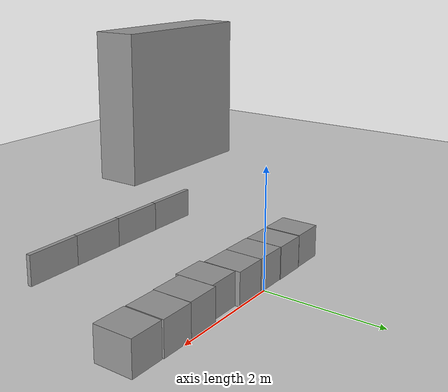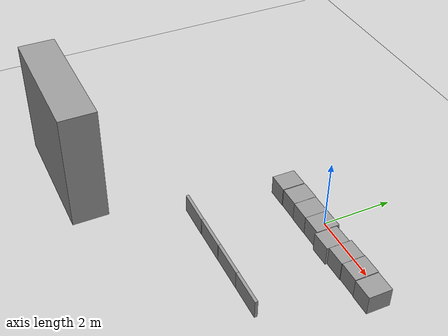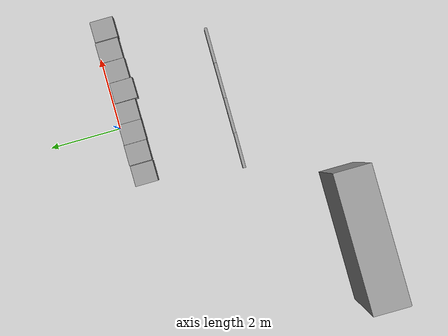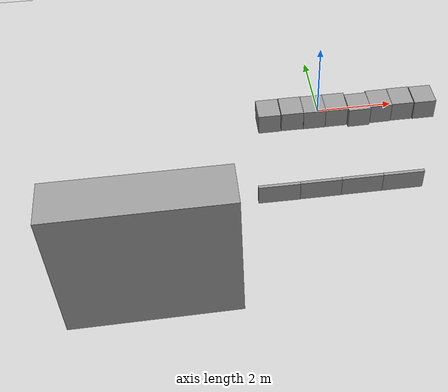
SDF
<sdf version="1.6">
 <world name="default">
  <model name="ground_plane">
   <static>1</static>
   <link name="link">
    <collision name="collision">
     <geometry><plane><normal>0 0 1</normal><size>100 100</size></plane></geometry>
     <surface>
      <contact><collide_bitmask>65535</collide_bitmask></contact>
      <friction><ode><mu>100</mu><mu2>50</mu2></ode></friction>
     </surface>
    </collision>
    <visual name="visual">
     <cast_shadows>0</cast_shadows>
     <geometry><plane><normal>0 0 1</normal><size>100 100</size></plane></geometry>
     <material>
      <script><uri>file://media/materials/scripts/gazebo.material</uri><name>Gazebo/Grey</name></script>
     </material>
    </visual>
   </link>
  </model>
  <model name="wall_4_1_3_clone_1">
   <link name="link">
    <inertial>
     <mass>12.3337</mass>
     <inertia><ixx>12.5329</ixx><ixy>0</ixy><ixz>0</ixz><iyy>25.4731</iyy><iyz>0</iyz><izz>14.9958</izz></inertia>
    </inertial>
    <pose>-2.9941 -0.388092 1.21174 0 -0 0</pose>
    <visual name="visual">
     <geometry><box><size>3.68647 1 3.34571</size></box></geometry>
     <material>
      <script><name>Gazebo/Grey</name><uri>file://media/materials/scripts/gazebo.material</uri></script>
     </material>
    </visual>
    <collision name="collision">
     <geometry><box><size>3.68647 1 3.34571</size></box></geometry>
     <surface>
      <friction>
       <ode><mu>1</mu><mu2>1</mu2><fdir1>0 0 0</fdir1><slip1>0</slip1><slip2>0</slip2></ode>
       <torsional>
        <coefficient>1</coefficient>
        <patch_radius>0</patch_radius>
        <surface_radius>0</surface_radius>
        <use_patch_radius>1</use_patch_radius>
        <ode><slip>0</slip></ode>
       </torsional>
      </friction>
      <bounce><restitution_coefficient>0</restitution_coefficient><threshold>1e+06</threshold></bounce>
      <contact>
       <collide_without_contact>0</collide_without_contact>
       <collide_without_contact_bitmask>1</collide_without_contact_bitmask>
       <collide_bitmask>1</collide_bitmask>
       <ode>
        <soft_cfm>0</soft_cfm>
        <soft_erp>0.2</soft_erp>
        <kp>1e+13</kp>
        <kd>1</kd>
        <max_vel>0.01</max_vel>
        <min_depth>0</min_depth>
       </ode>
       <bullet>
        <split_impulse>1</split_impulse>
        <split_impulse_penetration_threshold>-0.01</split_impulse_penetration_threshold>
        <soft_cfm>0</soft_cfm>
        <soft_erp>0.2</soft_erp>
        <kp>1e+13</kp>
        <kd>1</kd>
       </bullet>
      </contact>
     </surface>
    </collision>
   </link>
   <static>1</static>
   <allow_auto_disable>0</allow_auto_disable>
   <pose>-1.52472 -5.12582 0.5 0 -0 0</pose>
  </model>
  <model name="panel_14_clone_1_clone_clone_2">
   <link name="link">
    <inertial>
     <mass>0.0428479</mass>
     <inertia>
      <ixx>0.00456249</ixx>
      <ixy>0</ixy>
      <ixz>0</ixz>
      <iyy>0.00101543</iyy>
      <iyz>0</iyz>
      <izz>0.00359426</izz>
     </inertia>
    </inertial>
    <pose>-0.996065 -0.479892 0.260289 0 -0 0</pose>
    <visual name="visual">
     <geometry><box><size>0.081299 1 0.527041</size></box></geometry>
     <material>
      <script><name>Gazebo/Grey</name><uri>file://media/materials/scripts/gazebo.material</uri></script>
      <emissive>0 0 0 1</emissive>
      <shader type="vertex"><normal_map>__default__</normal_map></shader>
      <ambient>0.3 0.3 0.3 1</ambient>
      <diffuse>0.7 0.7 0.7 1</diffuse>
      <specular>0.01 0.01 0.01 1</specular>
     </material>
    </visual>
    <collision name="collision">
     <geometry><box><size>0.081299 1 0.527041</size></box></geometry>
     <surface>
      <friction>
       <ode><mu>1</mu><mu2>1</mu2><fdir1>0 0 0</fdir1><slip1>0</slip1><slip2>0</slip2></ode>
       <torsional>
        <coefficient>1</coefficient>
        <patch_radius>0</patch_radius>
        <surface_radius>0</surface_radius>
        <use_patch_radius>1</use_patch_radius>
        <ode><slip>0</slip></ode>
       </torsional>
      </friction>
      <bounce><restitution_coefficient>0</restitution_coefficient><threshold>1e+06</threshold></bounce>
      <contact>
       <collide_without_contact>0</collide_without_contact>
       <collide_without_contact_bitmask>1</collide_without_contact_bitmask>
       <collide_bitmask>1</collide_bitmask>
       <ode>
        <soft_cfm>0</soft_cfm>
        <soft_erp>0.2</soft_erp>
        <kp>1e+13</kp>
        <kd>1</kd>
        <max_vel>0.01</max_vel>
        <min_depth>0</min_depth>
       </ode>
       <bullet>
        <split_impulse>1</split_impulse>
        <split_impulse_penetration_threshold>-0.01</split_impulse_penetration_threshold>
        <soft_cfm>0</soft_cfm>
        <soft_erp>0.2</soft_erp>
        <kp>1e+13</kp>
        <kd>1</kd>
       </bullet>
      </contact>
     </surface>
    </collision>
   </link>
   <static>0</static>
   <allow_auto_disable>0</allow_auto_disable>
   <pose>1.98332 -4.04352 0.003231 1e-05 -0 -1.57459</pose>
  </model>
  <model name="panel_14_clone_1_clone_clone_3">
   <link name="link">
    <inertial>
     <mass>0.0428479</mass>
     <inertia>
      <ixx>0.00456249</ixx>
      <ixy>0</ixy>
      <ixz>0</ixz>
      <iyy>0.00101543</iyy>
      <iyz>0</iyz>
      <izz>0.00359426</izz>
     </inertia>
    </inertial>
    <pose>-0.996065 -0.479892 0.260289 0 -0 0</pose>
    <visual name="visual">
     <geometry><box><size>0.081299 1 0.527041</size></box></geometry>
     <material>
      <script><name>Gazebo/Grey</name><uri>file://media/materials/scripts/gazebo.material</uri></script>
      <emissive>0 0 0 1</emissive>
      <shader type="vertex"><normal_map>__default__</normal_map></shader>
      <ambient>0.3 0.3 0.3 1</ambient>
      <diffuse>0.7 0.7 0.7 1</diffuse>
      <specular>0.01 0.01 0.01 1</specular>
     </material>
    </visual>
    <collision name="collision">
     <geometry><box><size>0.081299 1 0.527041</size></box></geometry>
     <surface>
      <friction>
       <ode><mu>1</mu><mu2>1</mu2><fdir1>0 0 0</fdir1><slip1>0</slip1><slip2>0</slip2></ode>
       <torsional>
        <coefficient>1</coefficient>
        <patch_radius>0</patch_radius>
        <surface_radius>0</surface_radius>
        <use_patch_radius>1</use_patch_radius>
        <ode><slip>0</slip></ode>
       </torsional>
      </friction>
      <bounce><restitution_coefficient>0</restitution_coefficient><threshold>1e+06</threshold></bounce>
      <contact>
       <collide_without_contact>0</collide_without_contact>
       <collide_without_contact_bitmask>1</collide_without_contact_bitmask>
       <collide_bitmask>1</collide_bitmask>
       <ode>
        <soft_cfm>0</soft_cfm>
        <soft_erp>0.2</soft_erp>
        <kp>1e+13</kp>
        <kd>1</kd>
        <max_vel>0.01</max_vel>
        <min_depth>0</min_depth>
       </ode>
       <bullet>
        <split_impulse>1</split_impulse>
        <split_impulse_penetration_threshold>-0.01</split_impulse_penetration_threshold>
        <soft_cfm>0</soft_cfm>
        <soft_erp>0.2</soft_erp>
        <kp>1e+13</kp>
        <kd>1</kd>
       </bullet>
      </contact>
     </surface>
    </collision>
   </link>
   <static>0</static>
   <allow_auto_disable>0</allow_auto_disable>
   <pose>0.984938 -4.04067 0.003227 -4e-06 -0 -1.57273</pose>
  </model>
  <model name="panel_14_clone_1_clone_clone_4">
   <link name="link">
    <inertial>
     <mass>0.0428479</mass>
     <inertia>
      <ixx>0.00456249</ixx>
      <ixy>0</ixy>
      <ixz>0</ixz>
      <iyy>0.00101543</iyy>
      <iyz>0</iyz>
      <izz>0.00359426</izz>
     </inertia>
    </inertial>
    <pose>-0.996065 -0.479892 0.260289 0 -0 0</pose>
    <visual name="visual">
     <geometry><box><size>0.081299 1 0.527041</size></box></geometry>
     <material>
      <script><name>Gazebo/Grey</name><uri>file://media/materials/scripts/gazebo.material</uri></script>
      <emissive>0 0 0 1</emissive>
      <shader type="vertex"><normal_map>__default__</normal_map></shader>
      <ambient>0.3 0.3 0.3 1</ambient>
      <diffuse>0.7 0.7 0.7 1</diffuse>
      <specular>0.01 0.01 0.01 1</specular>
     </material>
    </visual>
    <collision name="collision">
     <geometry><box><size>0.081299 1 0.527041</size></box></geometry>
     <surface>
      <friction>
       <ode><mu>1</mu><mu2>1</mu2><fdir1>0 0 0</fdir1><slip1>0</slip1><slip2>0</slip2></ode>
       <torsional>
        <coefficient>1</coefficient>
        <patch_radius>0</patch_radius>
        <surface_radius>0</surface_radius>
        <use_patch_radius>1</use_patch_radius>
        <ode><slip>0</slip></ode>
       </torsional>
      </friction>
      <bounce><restitution_coefficient>0</restitution_coefficient><threshold>1e+06</threshold></bounce>
      <contact>
       <collide_without_contact>0</collide_without_contact>
       <collide_without_contact_bitmask>1</collide_without_contact_bitmask>
       <collide_bitmask>1</collide_bitmask>
       <ode>
        <soft_cfm>0</soft_cfm>
        <soft_erp>0.2</soft_erp>
        <kp>1e+13</kp>
        <kd>1</kd>
        <max_vel>0.01</max_vel>
        <min_depth>0</min_depth>
       </ode>
       <bullet>
        <split_impulse>1</split_impulse>
        <split_impulse_penetration_threshold>-0.01</split_impulse_penetration_threshold>
        <soft_cfm>0</soft_cfm>
        <soft_erp>0.2</soft_erp>
        <kp>1e+13</kp>
        <kd>1</kd>
       </bullet>
      </contact>
     </surface>
    </collision>
   </link>
   <static>0</static>
   <allow_auto_disable>0</allow_auto_disable>
   <pose>-0.017438 -4.04151 0.003231 1e-05 0 -1.57455</pose>
  </model>
  <model name="panel_14_clone_1_clone_clone_5">
   <link name="link">
    <inertial>
     <mass>0.0428479</mass>
     <inertia>
      <ixx>0.00456249</ixx>
      <ixy>0</ixy>
      <ixz>0</ixz>
      <iyy>0.00101543</iyy>
      <iyz>0</iyz>
      <izz>0.00359426</izz>
     </inertia>
    </inertial>
    <pose>-0.996065 -0.479892 0.260289 0 -0 0</pose>
    <visual name="visual">
     <geometry><box><size>0.081299 1 0.527041</size></box></geometry>
     <material>
      <script><name>Gazebo/Grey</name><uri>file://media/materials/scripts/gazebo.material</uri></script>
      <emissive>0 0 0 1</emissive>
      <shader type="vertex"><normal_map>__default__</normal_map></shader>
      <ambient>0.3 0.3 0.3 1</ambient>
      <diffuse>0.7 0.7 0.7 1</diffuse>
      <specular>0.01 0.01 0.01 1</specular>
     </material>
    </visual>
    <collision name="collision">
     <geometry><box><size>0.081299 1 0.527041</size></box></geometry>
     <surface>
      <friction>
       <ode><mu>1</mu><mu2>1</mu2><fdir1>0 0 0</fdir1><slip1>0</slip1><slip2>0</slip2></ode>
       <torsional>
        <coefficient>1</coefficient>
        <patch_radius>0</patch_radius>
        <surface_radius>0</surface_radius>
        <use_patch_radius>1</use_patch_radius>
        <ode><slip>0</slip></ode>
       </torsional>
      </friction>
      <bounce><restitution_coefficient>0</restitution_coefficient><threshold>1e+06</threshold></bounce>
      <contact>
       <collide_without_contact>0</collide_without_contact>
       <collide_without_contact_bitmask>1</collide_without_contact_bitmask>
       <collide_bitmask>1</collide_bitmask>
       <ode>
        <soft_cfm>0</soft_cfm>
        <soft_erp>0.2</soft_erp>
        <kp>1e+13</kp>
        <kd>1</kd>
        <max_vel>0.01</max_vel>
        <min_depth>0</min_depth>
       </ode>
       <bullet>
        <split_impulse>1</split_impulse>
        <split_impulse_penetration_threshold>-0.01</split_impulse_penetration_threshold>
        <soft_cfm>0</soft_cfm>
        <soft_erp>0.2</soft_erp>
        <kp>1e+13</kp>
        <kd>1</kd>
       </bullet>
      </contact>
     </surface>
    </collision>
   </link>
   <static>0</static>
   <allow_auto_disable>0</allow_auto_disable>
   <pose>-1.02336 -4.04311 0.003232 0 -1e-06 -1.57976</pose>
  </model>
  <model name="box_level5_clone_3">
   <link name="link">
    <inertial>
     <mass>0.207385</mass>
     <inertia>
      <ixx>0.0125184</ixx>
      <ixy>0</ixy>
      <ixz>0</ixz>
      <iyy>0.0111102</iyy>
      <iyz>0</iyz>
      <izz>0.0130087</izz>
     </inertia>
    </inertial>
    <visual name="visual">
     <geometry><box><size>0.579331 0.645836 0.554302</size></box></geometry>
     <material>
      <script><name>Gazebo/Grey</name><uri>file://media/materials/scripts/gazebo.material</uri></script>
     </material>
    </visual>
    <collision name="collision">
     <geometry><box><size>0.579331 0.645836 0.554302</size></box></geometry>
     <surface>
      <friction>
       <ode><mu>1</mu><mu2>1</mu2><fdir1>0 0 0</fdir1><slip1>0</slip1><slip2>0</slip2></ode>
       <torsional>
        <coefficient>1</coefficient>
        <patch_radius>0</patch_radius>
        <surface_radius>0</surface_radius>
        <use_patch_radius>1</use_patch_radius>
        <ode><slip>0</slip></ode>
       </torsional>
      </friction>
      <bounce><restitution_coefficient>0</restitution_coefficient><threshold>1e+06</threshold></bounce>
      <contact>
       <collide_without_contact>0</collide_without_contact>
       <collide_without_contact_bitmask>1</collide_without_contact_bitmask>
       <collide_bitmask>1</collide_bitmask>
       <ode>
        <soft_cfm>0</soft_cfm>
        <soft_erp>0.2</soft_erp>
        <kp>1e+13</kp>
        <kd>1</kd>
        <max_vel>0.01</max_vel>
        <min_depth>0</min_depth>
       </ode>
       <bullet>
        <split_impulse>1</split_impulse>
        <split_impulse_penetration_threshold>-0.01</split_impulse_penetration_threshold>
        <soft_cfm>0</soft_cfm>
        <soft_erp>0.2</soft_erp>
        <kp>1e+13</kp>
        <kd>1</kd>
       </bullet>
      </contact>
     </surface>
    </collision>
   </link>
   <static>0</static>
   <pose>2.71819 -0.342422 0.277144 -6e-06 4e-06 0</pose>
  </model>
  <model name="box_level5_clone_9">
   <link name="link">
    <inertial>
     <mass>0.207385</mass>
     <inertia>
      <ixx>0.0125184</ixx>
      <ixy>0</ixy>
      <ixz>0</ixz>
      <iyy>0.0111102</iyy>
      <iyz>0</iyz>
      <izz>0.0130087</izz>
     </inertia>
    </inertial>
    <visual name="visual">
     <geometry><box><size>0.579331 0.645836 0.554302</size></box></geometry>
     <material>
      <script><name>Gazebo/Grey</name><uri>file://media/materials/scripts/gazebo.material</uri></script>
     </material>
    </visual>
    <collision name="collision">
     <geometry><box><size>0.579331 0.645836 0.554302</size></box></geometry>
     <surface>
      <friction>
       <ode><mu>1</mu><mu2>1</mu2><fdir1>0 0 0</fdir1><slip1>0</slip1><slip2>0</slip2></ode>
       <torsional>
        <coefficient>1</coefficient>
        <patch_radius>0</patch_radius>
        <surface_radius>0</surface_radius>
        <use_patch_radius>1</use_patch_radius>
        <ode><slip>0</slip></ode>
       </torsional>
      </friction>
      <bounce><restitution_coefficient>0</restitution_coefficient><threshold>1e+06</threshold></bounce>
      <contact>
       <collide_without_contact>0</collide_without_contact>
       <collide_without_contact_bitmask>1</collide_without_contact_bitmask>
       <collide_bitmask>1</collide_bitmask>
       <ode>
        <soft_cfm>0</soft_cfm>
        <soft_erp>0.2</soft_erp>
        <kp>1e+13</kp>
        <kd>1</kd>
        <max_vel>0.01</max_vel>
        <min_depth>0</min_depth>
       </ode>
       <bullet>
        <split_impulse>1</split_impulse>
        <split_impulse_penetration_threshold>-0.01</split_impulse_penetration_threshold>
        <soft_cfm>0</soft_cfm>
        <soft_erp>0.2</soft_erp>
        <kp>1e+13</kp>
        <kd>1</kd>
       </bullet>
      </contact>
     </surface>
    </collision>
   </link>
   <static>0</static>
   <pose>2.12079 -0.330202 0.277144 -6e-06 4e-06 0</pose>
  </model>
  <model name="box_level5_clone_10">
   <link name="link">
    <inertial>
     <mass>0.207385</mass>
     <inertia>
      <ixx>0.0125184</ixx>
      <ixy>0</ixy>
      <ixz>0</ixz>
      <iyy>0.0111102</iyy>
      <iyz>0</iyz>
      <izz>0.0130087</izz>
     </inertia>
    </inertial>
    <visual name="visual">
     <geometry><box><size>0.579331 0.645836 0.554302</size></box></geometry>
     <material>
      <script><name>Gazebo/Grey</name><uri>file://media/materials/scripts/gazebo.material</uri></script>
     </material>
    </visual>
    <collision name="collision">
     <geometry><box><size>0.579331 0.645836 0.554302</size></box></geometry>
     <surface>
      <friction>
       <ode><mu>1</mu><mu2>1</mu2><fdir1>0 0 0</fdir1><slip1>0</slip1><slip2>0</slip2></ode>
       <torsional>
        <coefficient>1</coefficient>
        <patch_radius>0</patch_radius>
        <surface_radius>0</surface_radius>
        <use_patch_radius>1</use_patch_radius>
        <ode><slip>0</slip></ode>
       </torsional>
      </friction>
      <bounce><restitution_coefficient>0</restitution_coefficient><threshold>1e+06</threshold></bounce>
      <contact>
       <collide_without_contact>0</collide_without_contact>
       <collide_without_contact_bitmask>1</collide_without_contact_bitmask>
       <collide_bitmask>1</collide_bitmask>
       <ode>
        <soft_cfm>0</soft_cfm>
        <soft_erp>0.2</soft_erp>
        <kp>1e+13</kp>
        <kd>1</kd>
        <max_vel>0.01</max_vel>
        <min_depth>0</min_depth>
       </ode>
       <bullet>
        <split_impulse>1</split_impulse>
        <split_impulse_penetration_threshold>-0.01</split_impulse_penetration_threshold>
        <soft_cfm>0</soft_cfm>
        <soft_erp>0.2</soft_erp>
        <kp>1e+13</kp>
        <kd>1</kd>
       </bullet>
      </contact>
     </surface>
    </collision>
   </link>
   <static>0</static>
   <pose>-1.38907 -0.336287 0.277144 -6e-06 4e-06 0</pose>
  </model>
  <model name="box_level5_clone_11">
   <link name="link">
    <inertial>
     <mass>0.207385</mass>
     <inertia>
      <ixx>0.0125184</ixx>
      <ixy>0</ixy>
      <ixz>0</ixz>
      <iyy>0.0111102</iyy>
      <iyz>0</iyz>
      <izz>0.0130087</izz>
     </inertia>
    </inertial>
    <visual name="visual">
     <geometry><box><size>0.579331 0.645836 0.554302</size></box></geometry>
     <material>
      <script><name>Gazebo/Grey</name><uri>file://media/materials/scripts/gazebo.material</uri></script>
     </material>
    </visual>
    <collision name="collision">
     <geometry><box><size>0.579331 0.645836 0.554302</size></box></geometry>
     <surface>
      <friction>
       <ode><mu>1</mu><mu2>1</mu2><fdir1>0 0 0</fdir1><slip1>0</slip1><slip2>0</slip2></ode>
       <torsional>
        <coefficient>1</coefficient>
        <patch_radius>0</patch_radius>
        <surface_radius>0</surface_radius>
        <use_patch_radius>1</use_patch_radius>
        <ode><slip>0</slip></ode>
       </torsional>
      </friction>
      <bounce><restitution_coefficient>0</restitution_coefficient><threshold>1e+06</threshold></bounce>
      <contact>
       <collide_without_contact>0</collide_without_contact>
       <collide_without_contact_bitmask>1</collide_without_contact_bitmask>
       <collide_bitmask>1</collide_bitmask>
       <ode>
        <soft_cfm>0</soft_cfm>
        <soft_erp>0.2</soft_erp>
        <kp>1e+13</kp>
        <kd>1</kd>
        <max_vel>0.01</max_vel>
        <min_depth>0</min_depth>
       </ode>
       <bullet>
        <split_impulse>1</split_impulse>
        <split_impulse_penetration_threshold>-0.01</split_impulse_penetration_threshold>
        <soft_cfm>0</soft_cfm>
        <soft_erp>0.2</soft_erp>
        <kp>1e+13</kp>
        <kd>1</kd>
       </bullet>
      </contact>
     </surface>
    </collision>
   </link>
   <static>0</static>
   <pose>-0.792316 -0.328829 0.277144 -6e-06 4e-06 0</pose>
  </model>
  <model name="box_level5_clone_12">
   <link name="link">
    <inertial>
     <mass>0.207385</mass>
     <inertia>
      <ixx>0.0125184</ixx>
      <ixy>0</ixy>
      <ixz>0</ixz>
      <iyy>0.0111102</iyy>
      <iyz>0</iyz>
      <izz>0.0130087</izz>
     </inertia>
    </inertial>
    <visual name="visual">
     <geometry><box><size>0.579331 0.645836 0.554302</size></box></geometry>
     <material>
      <script><name>Gazebo/Grey</name><uri>file://media/materials/scripts/gazebo.material</uri></script>
     </material>
    </visual>
    <collision name="collision">
     <geometry><box><size>0.579331 0.645836 0.554302</size></box></geometry>
     <surface>
      <friction>
       <ode><mu>1</mu><mu2>1</mu2><fdir1>0 0 0</fdir1><slip1>0</slip1><slip2>0</slip2></ode>
       <torsional>
        <coefficient>1</coefficient>
        <patch_radius>0</patch_radius>
        <surface_radius>0</surface_radius>
        <use_patch_radius>1</use_patch_radius>
        <ode><slip>0</slip></ode>
       </torsional>
      </friction>
      <bounce><restitution_coefficient>0</restitution_coefficient><threshold>1e+06</threshold></bounce>
      <contact>
       <collide_without_contact>0</collide_without_contact>
       <collide_without_contact_bitmask>1</collide_without_contact_bitmask>
       <collide_bitmask>1</collide_bitmask>
       <ode>
        <soft_cfm>0</soft_cfm>
        <soft_erp>0.2</soft_erp>
        <kp>1e+13</kp>
        <kd>1</kd>
        <max_vel>0.01</max_vel>
        <min_depth>0</min_depth>
       </ode>
       <bullet>
        <split_impulse>1</split_impulse>
        <split_impulse_penetration_threshold>-0.01</split_impulse_penetration_threshold>
        <soft_cfm>0</soft_cfm>
        <soft_erp>0.2</soft_erp>
        <kp>1e+13</kp>
        <kd>1</kd>
       </bullet>
      </contact>
     </surface>
    </collision>
   </link>
   <static>0</static>
   <pose>-0.210851 -0.336688 0.277151 -0 -0 -0</pose>
  </model>
  <model name="box_level5_clone_13">
   <link name="link">
    <inertial>
     <mass>0.207385</mass>
     <inertia>
      <ixx>0.0125184</ixx>
      <ixy>0</ixy>
      <ixz>0</ixz>
      <iyy>0.0111102</iyy>
      <iyz>0</iyz>
      <izz>0.0130087</izz>
     </inertia>
    </inertial>
    <visual name="visual">
     <geometry><box><size>0.579331 0.645836 0.554302</size></box></geometry>
     <material>
      <script><name>Gazebo/Grey</name><uri>file://media/materials/scripts/gazebo.material</uri></script>
     </material>
    </visual>
    <collision name="collision">
     <geometry><box><size>0.579331 0.645836 0.554302</size></box></geometry>
     <surface>
      <friction>
       <ode><mu>1</mu><mu2>1</mu2><fdir1>0 0 0</fdir1><slip1>0</slip1><slip2>0</slip2></ode>
       <torsional>
        <coefficient>1</coefficient>
        <patch_radius>0</patch_radius>
        <surface_radius>0</surface_radius>
        <use_patch_radius>1</use_patch_radius>
        <ode><slip>0</slip></ode>
       </torsional>
      </friction>
      <bounce><restitution_coefficient>0</restitution_coefficient><threshold>1e+06</threshold></bounce>
      <contact>
       <collide_without_contact>0</collide_without_contact>
       <collide_without_contact_bitmask>1</collide_without_contact_bitmask>
       <collide_bitmask>1</collide_bitmask>
       <ode>
        <soft_cfm>0</soft_cfm>
        <soft_erp>0.2</soft_erp>
        <kp>1e+13</kp>
        <kd>1</kd>
        <max_vel>0.01</max_vel>
        <min_depth>0</min_depth>
       </ode>
       <bullet>
        <split_impulse>1</split_impulse>
        <split_impulse_penetration_threshold>-0.01</split_impulse_penetration_threshold>
        <soft_cfm>0</soft_cfm>
        <soft_erp>0.2</soft_erp>
        <kp>1e+13</kp>
        <kd>1</kd>
       </bullet>
      </contact>
     </surface>
    </collision>
   </link>
   <static>0</static>
   <pose>0.3685 -0.333803 0.277151 -0 -0 -0</pose>
  </model>
  <model name="box_level5_clone_14">
   <link name="link">
    <inertial>
     <mass>0.207385</mass>
     <inertia>
      <ixx>0.0125184</ixx>
      <ixy>0</ixy>
      <ixz>0</ixz>
      <iyy>0.0111102</iyy>
      <iyz>0</iyz>
      <izz>0.0130087</izz>
     </inertia>
    </inertial>
    <visual name="visual">
     <geometry><box><size>0.579331 0.645836 0.554302</size></box></geometry>
     <material>
      <script><name>Gazebo/Grey</name><uri>file://media/materials/scripts/gazebo.material</uri></script>
     </material>
    </visual>
    <collision name="collision">
     <geometry><box><size>0.579331 0.645836 0.554302</size></box></geometry>
     <surface>
      <friction>
       <ode><mu>1</mu><mu2>1</mu2><fdir1>0 0 0</fdir1><slip1>0</slip1><slip2>0</slip2></ode>
       <torsional>
        <coefficient>1</coefficient>
        <patch_radius>0</patch_radius>
        <surface_radius>0</surface_radius>
        <use_patch_radius>1</use_patch_radius>
        <ode><slip>0</slip></ode>
       </torsional>
      </friction>
      <bounce><restitution_coefficient>0</restitution_coefficient><threshold>1e+06</threshold></bounce>
      <contact>
       <collide_without_contact>0</collide_without_contact>
       <collide_without_contact_bitmask>1</collide_without_contact_bitmask>
       <collide_bitmask>1</collide_bitmask>
       <ode>
        <soft_cfm>0</soft_cfm>
        <soft_erp>0.2</soft_erp>
        <kp>1e+13</kp>
        <kd>1</kd>
        <max_vel>0.01</max_vel>
        <min_depth>0</min_depth>
       </ode>
       <bullet>
        <split_impulse>1</split_impulse>
        <split_impulse_penetration_threshold>-0.01</split_impulse_penetration_threshold>
        <soft_cfm>0</soft_cfm>
        <soft_erp>0.2</soft_erp>
        <kp>1e+13</kp>
        <kd>1</kd>
       </bullet>
      </contact>
     </surface>
    </collision>
   </link>
   <static>0</static>
   <pose>1.53887 -0.346059 0.277151 0 -0 0.007629</pose>
  </model>
  <model name="box_level5_clone_15">
   <link name="link">
    <inertial>
     <mass>0.207385</mass>
     <inertia>
      <ixx>0.0125184</ixx>
      <ixy>0</ixy>
      <ixz>0</ixz>
      <iyy>0.0111102</iyy>
      <iyz>0</iyz>
      <izz>0.0130087</izz>
     </inertia>
    </inertial>
    <visual name="visual">
     <geometry><box><size>0.579331 0.645836 0.554302</size></box></geometry>
     <material>
      <script><name>Gazebo/Grey</name><uri>file://media/materials/scripts/gazebo.material</uri></script>
     </material>
    </visual>
    <collision name="collision">
     <geometry><box><size>0.579331 0.645836 0.554302</size></box></geometry>
     <surface>
      <friction>
       <ode><mu>1</mu><mu2>1</mu2><fdir1>0 0 0</fdir1><slip1>0</slip1><slip2>0</slip2></ode>
       <torsional>
        <coefficient>1</coefficient>
        <patch_radius>0</patch_radius>
        <surface_radius>0</surface_radius>
        <use_patch_radius>1</use_patch_radius>
        <ode><slip>0</slip></ode>
       </torsional>
      </friction>
      <bounce><restitution_coefficient>0</restitution_coefficient><threshold>1e+06</threshold></bounce>
      <contact>
       <collide_without_contact>0</collide_without_contact>
       <collide_without_contact_bitmask>1</collide_without_contact_bitmask>
       <collide_bitmask>1</collide_bitmask>
       <ode>
        <soft_cfm>0</soft_cfm>
        <soft_erp>0.2</soft_erp>
        <kp>1e+13</kp>
        <kd>1</kd>
        <max_vel>0.01</max_vel>
        <min_depth>0</min_depth>
       </ode>
       <bullet>
        <split_impulse>1</split_impulse>
        <split_impulse_penetration_threshold>-0.01</split_impulse_penetration_threshold>
        <soft_cfm>0</soft_cfm>
        <soft_erp>0.2</soft_erp>
        <kp>1e+13</kp>
        <kd>1</kd>
       </bullet>
      </contact>
     </surface>
    </collision>
   </link>
   <static>0</static>
   <pose>0.958802 -0.40842 0.277151 0 -0 0.010437</pose>
  </model>
 </world>
</sdf>
